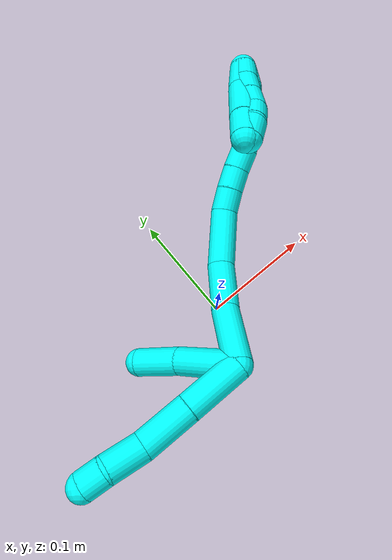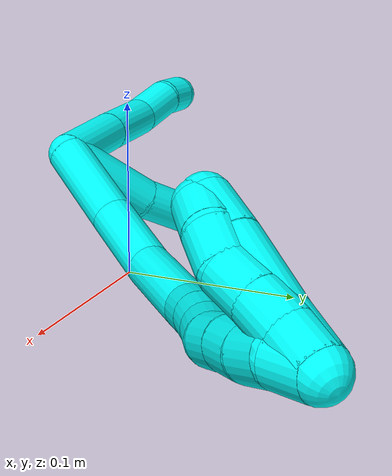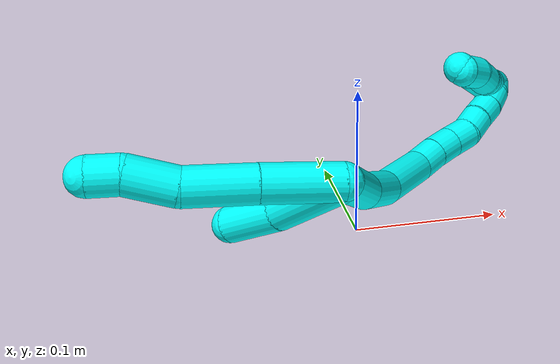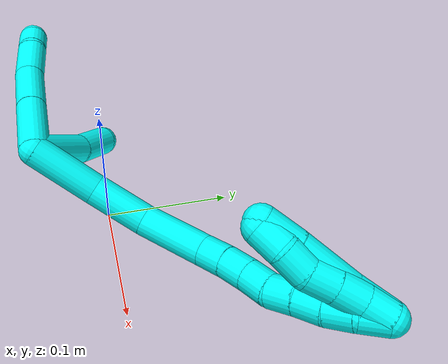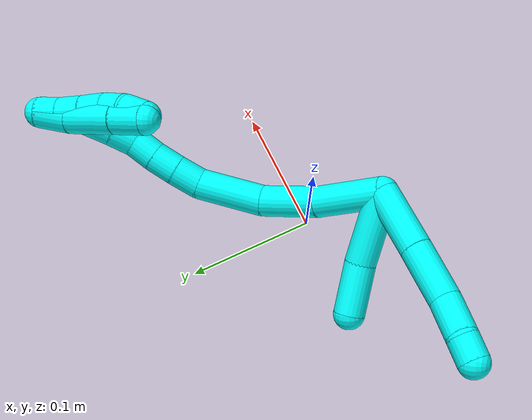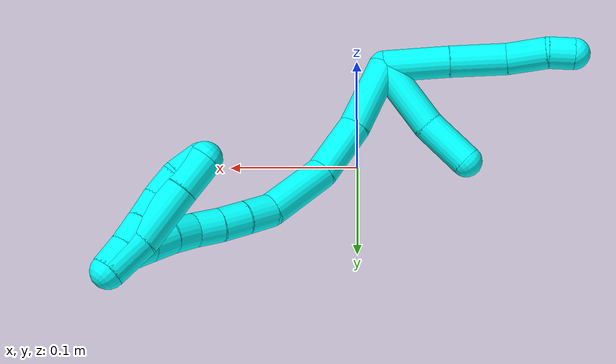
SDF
<sdf version="1.7">
 <world name="default">
  <model name="3">
   <static>0</static>
   <link name="3">
    <collision name="collision-cylinder-e_1_2_8">
     <pose>-0.011251 -0.016497 -0.016587 2.35894 -0.448287 -1.00955</pose>
     <geometry><cylinder><radius>0.0125</radius><length>0.051918</length></cylinder></geometry>
     <surface>
      <friction><ode><mu>1.16</mu><mu2>1.16</mu2><slip1>0</slip1><slip2>0</slip2></ode></friction>
      <contact><ode><kp>1e+06</kp><kd>1</kd><max_vel>0</max_vel><min_depth>0.001</min_depth></ode></contact>
     </surface>
    </collision>
    <visual name="visual-cylinder-e_1_2_8">
     <pose>-0.011251 -0.016497 -0.016587 2.35894 -0.448287 -1.00955</pose>
     <geometry><cylinder><radius>0.0125</radius><length>0.051918</length></cylinder></geometry>
     <material><ambient>0.003922 1 0.996078 1</ambient></material>
    </visual>
    <collision name="collision-cylinder-e_2_8_9">
     <pose>-0.032904 -0.0473 -0.047392 2.35308 -0.476127 -1.05606</pose>
     <geometry><cylinder><radius>0.0125</radius><length>0.045387</length></cylinder></geometry>
     <surface>
      <friction><ode><mu>1.16</mu><mu2>1.16</mu2><slip1>0</slip1><slip2>0</slip2></ode></friction>
      <contact><ode><kp>1e+06</kp><kd>1</kd><max_vel>0</max_vel><min_depth>0.001</min_depth></ode></contact>
     </surface>
    </collision>
    <visual name="visual-cylinder-e_2_8_9">
     <pose>-0.032904 -0.0473 -0.047392 2.35308 -0.476127 -1.05606</pose>
     <geometry><cylinder><radius>0.0125</radius><length>0.045387</length></cylinder></geometry>
     <material><ambient>0.003922 1 0.996078 1</ambient></material>
    </visual>
    <collision name="collision-cylinder-e_3_9_10">
     <pose>-0.047411 -0.074402 -0.070825 2.19493 -0.25473 -0.490017</pose>
     <geometry><cylinder><radius>0.0125</radius><length>0.03259</length></cylinder></geometry>
     <surface>
      <friction><ode><mu>1.16</mu><mu2>1.16</mu2><slip1>0</slip1><slip2>0</slip2></ode></friction>
      <contact><ode><kp>1e+06</kp><kd>1</kd><max_vel>0</max_vel><min_depth>0.001</min_depth></ode></contact>
     </surface>
    </collision>
    <visual name="visual-cylinder-e_3_9_10">
     <pose>-0.047411 -0.074402 -0.070825 2.19493 -0.25473 -0.490017</pose>
     <geometry><cylinder><radius>0.0125</radius><length>0.03259</length></cylinder></geometry>
     <material><ambient>0.003922 1 0.996078 1</ambient></material>
    </visual>
    <collision name="collision-cylinder-e_4_10_6">
     <pose>-0.056622 -0.093878 -0.085552 2.26069 -0.532637 -1.04934</pose>
     <geometry><cylinder><radius>0.0125</radius><length>0.020105</length></cylinder></geometry>
     <surface>
      <friction><ode><mu>1.16</mu><mu2>1.16</mu2><slip1>0</slip1><slip2>0</slip2></ode></friction>
      <contact><ode><kp>1e+06</kp><kd>1</kd><max_vel>0</max_vel><min_depth>0.001</min_depth></ode></contact>
     </surface>
    </collision>
    <visual name="visual-cylinder-e_4_10_6">
     <pose>-0.056622 -0.093878 -0.085552 2.26069 -0.532637 -1.04934</pose>
     <geometry><cylinder><radius>0.0125</radius><length>0.020105</length></cylinder></geometry>
     <material><ambient>0.003922 1 0.996078 1</ambient></material>
    </visual>
    <collision name="collision-cylinder-e_1_2_11">
     <pose>-0.023957 -0.01559 0.006829 1.15793 -0.953089 -0.65091</pose>
     <geometry><cylinder><radius>0.0125</radius><length>0.058775</length></cylinder></geometry>
     <surface>
      <friction><ode><mu>1.16</mu><mu2>1.16</mu2><slip1>0</slip1><slip2>0</slip2></ode></friction>
      <contact><ode><kp>1e+06</kp><kd>1</kd><max_vel>0</max_vel><min_depth>0.001</min_depth></ode></contact>
     </surface>
    </collision>
    <visual name="visual-cylinder-e_1_2_11">
     <pose>-0.023957 -0.01559 0.006829 1.15793 -0.953089 -0.65091</pose>
     <geometry><cylinder><radius>0.0125</radius><length>0.058775</length></cylinder></geometry>
     <material><ambient>0.003922 1 0.996078 1</ambient></material>
    </visual>
    <collision name="collision-cylinder-e_2_11_5">
     <pose>-0.063495 -0.044484 0.015918 1.40255 -0.85707 -0.736401</pose>
     <geometry><cylinder><radius>0.0125</radius><length>0.041225</length></cylinder></geometry>
     <surface>
      <friction><ode><mu>1.16</mu><mu2>1.16</mu2><slip1>0</slip1><slip2>0</slip2></ode></friction>
      <contact><ode><kp>1e+06</kp><kd>1</kd><max_vel>0</max_vel><min_depth>0.001</min_depth></ode></contact>
     </surface>
    </collision>
    <visual name="visual-cylinder-e_2_11_5">
     <pose>-0.063495 -0.044484 0.015918 1.40255 -0.85707 -0.736401</pose>
     <geometry><cylinder><radius>0.0125</radius><length>0.041225</length></cylinder></geometry>
     <material><ambient>0.003922 1 0.996078 1</ambient></material>
    </visual>
    <collision name="collision-cylinder-e_1_2_12">
     <pose>-0.007385 -0.001743 0.026925 0.064629 -0.267147 -0.008687</pose>
     <geometry><cylinder><radius>0.0125</radius><length>0.055948</length></cylinder></geometry>
     <surface>
      <friction><ode><mu>1.16</mu><mu2>1.16</mu2><slip1>0</slip1><slip2>0</slip2></ode></friction>
      <contact><ode><kp>1e+06</kp><kd>1</kd><max_vel>0</max_vel><min_depth>0.001</min_depth></ode></contact>
     </surface>
    </collision>
    <visual name="visual-cylinder-e_1_2_12">
     <pose>-0.007385 -0.001743 0.026925 0.064629 -0.267147 -0.008687</pose>
     <geometry><cylinder><radius>0.0125</radius><length>0.055948</length></cylinder></geometry>
     <material><ambient>0.003922 1 0.996078 1</ambient></material>
    </visual>
    <collision name="collision-cylinder-e_2_12_13">
     <pose>-0.016695 -0.004582 0.07697 0.047423 -0.083023 -0.00197</pose>
     <geometry><cylinder><radius>0.0125</radius><length>0.046452</length></cylinder></geometry>
     <surface>
      <friction><ode><mu>1.16</mu><mu2>1.16</mu2><slip1>0</slip1><slip2>0</slip2></ode></friction>
      <contact><ode><kp>1e+06</kp><kd>1</kd><max_vel>0</max_vel><min_depth>0.001</min_depth></ode></contact>
     </surface>
    </collision>
    <visual name="visual-cylinder-e_2_12_13">
     <pose>-0.016695 -0.004582 0.07697 0.047423 -0.083023 -0.00197</pose>
     <geometry><cylinder><radius>0.0125</radius><length>0.046452</length></cylinder></geometry>
     <material><ambient>0.003922 1 0.996078 1</ambient></material>
    </visual>
    <collision name="collision-cylinder-e_3_13_14">
     <pose>-0.012053 -0.007181 0.126228 0.057375 0.245791 0.007089</pose>
     <geometry><cylinder><radius>0.0125</radius><length>0.053984</length></cylinder></geometry>
     <surface>
      <friction><ode><mu>1.16</mu><mu2>1.16</mu2><slip1>0</slip1><slip2>0</slip2></ode></friction>
      <contact><ode><kp>1e+06</kp><kd>1</kd><max_vel>0</max_vel><min_depth>0.001</min_depth></ode></contact>
     </surface>
    </collision>
    <visual name="visual-cylinder-e_3_13_14">
     <pose>-0.012053 -0.007181 0.126228 0.057375 0.245791 0.007089</pose>
     <geometry><cylinder><radius>0.0125</radius><length>0.053984</length></cylinder></geometry>
     <material><ambient>0.003922 1 0.996078 1</ambient></material>
    </visual>
    <collision name="collision-cylinder-e_4_14_15">
     <pose>0.000302 -0.008599 0.161736 -0.008854 0.553287 -0.002514</pose>
     <geometry><cylinder><radius>0.0125</radius><length>0.022029</length></cylinder></geometry>
     <surface>
      <friction><ode><mu>1.16</mu><mu2>1.16</mu2><slip1>0</slip1><slip2>0</slip2></ode></friction>
      <contact><ode><kp>1e+06</kp><kd>1</kd><max_vel>0</max_vel><min_depth>0.001</min_depth></ode></contact>
     </surface>
    </collision>
    <visual name="visual-cylinder-e_4_14_15">
     <pose>0.000302 -0.008599 0.161736 -0.008854 0.553287 -0.002514</pose>
     <geometry><cylinder><radius>0.0125</radius><length>0.022029</length></cylinder></geometry>
     <material><ambient>0.003922 1 0.996078 1</ambient></material>
    </visual>
    <collision name="collision-cylinder-e_5_15_16">
     <pose>0.011406 -0.00768 0.179986 -0.093945 0.537545 -0.025893</pose>
     <geometry><cylinder><radius>0.0125</radius><length>0.020765</length></cylinder></geometry>
     <surface>
      <friction><ode><mu>1.16</mu><mu2>1.16</mu2><slip1>0</slip1><slip2>0</slip2></ode></friction>
      <contact><ode><kp>1e+06</kp><kd>1</kd><max_vel>0</max_vel><min_depth>0.001</min_depth></ode></contact>
     </surface>
    </collision>
    <visual name="visual-cylinder-e_5_15_16">
     <pose>0.011406 -0.00768 0.179986 -0.093945 0.537545 -0.025893</pose>
     <geometry><cylinder><radius>0.0125</radius><length>0.020765</length></cylinder></geometry>
     <material><ambient>0.003922 1 0.996078 1</ambient></material>
    </visual>
    <collision name="collision-cylinder-e_6_16_17">
     <pose>0.02246 -0.005356 0.197277 -0.175029 0.591419 -0.053445</pose>
     <geometry><cylinder><radius>0.0125</radius><length>0.020581</length></cylinder></geometry>
     <surface>
      <friction><ode><mu>1.16</mu><mu2>1.16</mu2><slip1>0</slip1><slip2>0</slip2></ode></friction>
      <contact><ode><kp>1e+06</kp><kd>1</kd><max_vel>0</max_vel><min_depth>0.001</min_depth></ode></contact>
     </surface>
    </collision>
    <visual name="visual-cylinder-e_6_16_17">
     <pose>0.02246 -0.005356 0.197277 -0.175029 0.591419 -0.053445</pose>
     <geometry><cylinder><radius>0.0125</radius><length>0.020581</length></cylinder></geometry>
     <material><ambient>0.003922 1 0.996078 1</ambient></material>
    </visual>
    <collision name="collision-cylinder-e_7_17_18">
     <pose>0.034013 -0.005503 0.213738 0.200385 0.616137 0.063955</pose>
     <geometry><cylinder><radius>0.0125</radius><length>0.020127</length></cylinder></geometry>
     <surface>
      <friction><ode><mu>1.16</mu><mu2>1.16</mu2><slip1>0</slip1><slip2>0</slip2></ode></friction>
      <contact><ode><kp>1e+06</kp><kd>1</kd><max_vel>0</max_vel><min_depth>0.001</min_depth></ode></contact>
     </surface>
    </collision>
    <visual name="visual-cylinder-e_7_17_18">
     <pose>0.034013 -0.005503 0.213738 0.200385 0.616137 0.063955</pose>
     <geometry><cylinder><radius>0.0125</radius><length>0.020127</length></cylinder></geometry>
     <material><ambient>0.003922 1 0.996078 1</ambient></material>
    </visual>
    <collision name="collision-cylinder-e_8_18_19">
     <pose>0.044843 -0.008431 0.230346 0.149985 0.525051 0.040375</pose>
     <geometry><cylinder><radius>0.0125</radius><length>0.02001</length></cylinder></geometry>
     <surface>
      <friction><ode><mu>1.16</mu><mu2>1.16</mu2><slip1>0</slip1><slip2>0</slip2></ode></friction>
      <contact><ode><kp>1e+06</kp><kd>1</kd><max_vel>0</max_vel><min_depth>0.001</min_depth></ode></contact>
     </surface>
    </collision>
    <visual name="visual-cylinder-e_8_18_19">
     <pose>0.044843 -0.008431 0.230346 0.149985 0.525051 0.040375</pose>
     <geometry><cylinder><radius>0.0125</radius><length>0.02001</length></cylinder></geometry>
     <material><ambient>0.003922 1 0.996078 1</ambient></material>
    </visual>
    <collision name="collision-cylinder-e_9_19_20">
     <pose>0.055073 -0.012556 0.246957 0.338162 0.548561 0.095993</pose>
     <geometry><cylinder><radius>0.0125</radius><length>0.020002</length></cylinder></geometry>
     <surface>
      <friction><ode><mu>1.16</mu><mu2>1.16</mu2><slip1>0</slip1><slip2>0</slip2></ode></friction>
      <contact><ode><kp>1e+06</kp><kd>1</kd><max_vel>0</max_vel><min_depth>0.001</min_depth></ode></contact>
     </surface>
    </collision>
    <visual name="visual-cylinder-e_9_19_20">
     <pose>0.055073 -0.012556 0.246957 0.338162 0.548561 0.095993</pose>
     <geometry><cylinder><radius>0.0125</radius><length>0.020002</length></cylinder></geometry>
     <material><ambient>0.003922 1 0.996078 1</ambient></material>
    </visual>
    <collision name="collision-cylinder-e_10_20_1">
     <pose>0.062605 -0.019448 0.263905 0.428174 0.232626 0.050796</pose>
     <geometry><cylinder><radius>0.0125</radius><length>0.020103</length></cylinder></geometry>
     <surface>
      <friction><ode><mu>1.16</mu><mu2>1.16</mu2><slip1>0</slip1><slip2>0</slip2></ode></friction>
      <contact><ode><kp>1e+06</kp><kd>1</kd><max_vel>0</max_vel><min_depth>0.001</min_depth></ode></contact>
     </surface>
    </collision>
    <visual name="visual-cylinder-e_10_20_1">
     <pose>0.062605 -0.019448 0.263905 0.428174 0.232626 0.050796</pose>
     <geometry><cylinder><radius>0.0125</radius><length>0.020103</length></cylinder></geometry>
     <material><ambient>0.003922 1 0.996078 1</ambient></material>
    </visual>
    <collision name="collision-cylinder-e_1_1_21">
     <pose>0.065547 -0.023172 0.262828 -3.1078 0.062445 -2.14968</pose>
     <geometry><cylinder><radius>0.0125</radius><length>0.02</length></cylinder></geometry>
     <surface>
      <friction><ode><mu>1.16</mu><mu2>1.16</mu2><slip1>0</slip1><slip2>0</slip2></ode></friction>
      <contact><ode><kp>1e+06</kp><kd>1</kd><max_vel>0</max_vel><min_depth>0.001</min_depth></ode></contact>
     </surface>
    </collision>
    <visual name="visual-cylinder-e_1_1_21">
     <pose>0.065547 -0.023172 0.262828 -3.1078 0.062445 -2.14968</pose>
     <geometry><cylinder><radius>0.0125</radius><length>0.02</length></cylinder></geometry>
     <material><ambient>0.003922 1 0.996078 1</ambient></material>
    </visual>
    <collision name="collision-cylinder-e_2_21_22">
     <pose>0.067285 -0.021799 0.242969 -3.03717 0.111658 -1.6379</pose>
     <geometry><cylinder><radius>0.0125</radius><length>0.02</length></cylinder></geometry>
     <surface>
      <friction><ode><mu>1.16</mu><mu2>1.16</mu2><slip1>0</slip1><slip2>0</slip2></ode></friction>
      <contact><ode><kp>1e+06</kp><kd>1</kd><max_vel>0</max_vel><min_depth>0.001</min_depth></ode></contact>
     </surface>
    </collision>
    <visual name="visual-cylinder-e_2_21_22">
     <pose>0.067285 -0.021799 0.242969 -3.03717 0.111658 -1.6379</pose>
     <geometry><cylinder><radius>0.0125</radius><length>0.02</length></cylinder></geometry>
     <material><ambient>0.003922 1 0.996078 1</ambient></material>
    </visual>
    <collision name="collision-cylinder-e_3_22_23">
     <pose>0.069526 -0.019157 0.22328 -2.97931 0.112871 -1.21438</pose>
     <geometry><cylinder><radius>0.0125</radius><length>0.02</length></cylinder></geometry>
     <surface>
      <friction><ode><mu>1.16</mu><mu2>1.16</mu2><slip1>0</slip1><slip2>0</slip2></ode></friction>
      <contact><ode><kp>1e+06</kp><kd>1</kd><max_vel>0</max_vel><min_depth>0.001</min_depth></ode></contact>
     </surface>
    </collision>
    <visual name="visual-cylinder-e_3_22_23">
     <pose>0.069526 -0.019157 0.22328 -2.97931 0.112871 -1.21438</pose>
     <geometry><cylinder><radius>0.0125</radius><length>0.02</length></cylinder></geometry>
     <material><ambient>0.003922 1 0.996078 1</ambient></material>
    </visual>
    <collision name="collision-cylinder-e_4_23_24">
     <pose>0.072357 -0.019287 0.203775 2.96458 0.171308 1.53788</pose>
     <geometry><cylinder><radius>0.0125</radius><length>0.02</length></cylinder></geometry>
     <surface>
      <friction><ode><mu>1.16</mu><mu2>1.16</mu2><slip1>0</slip1><slip2>0</slip2></ode></friction>
      <contact><ode><kp>1e+06</kp><kd>1</kd><max_vel>0</max_vel><min_depth>0.001</min_depth></ode></contact>
     </surface>
    </collision>
    <visual name="visual-cylinder-e_4_23_24">
     <pose>0.072357 -0.019287 0.203775 2.96458 0.171308 1.53788</pose>
     <geometry><cylinder><radius>0.0125</radius><length>0.02</length></cylinder></geometry>
     <material><ambient>0.003922 1 0.996078 1</ambient></material>
    </visual>
    <collision name="collision-cylinder-e_5_24_4">
     <pose>0.073138 -0.023104 0.184338 2.93093 -0.092467 -0.825025</pose>
     <geometry><cylinder><radius>0.0125</radius><length>0.02</length></cylinder></geometry>
     <surface>
      <friction><ode><mu>1.16</mu><mu2>1.16</mu2><slip1>0</slip1><slip2>0</slip2></ode></friction>
      <contact><ode><kp>1e+06</kp><kd>1</kd><max_vel>0</max_vel><min_depth>0.001</min_depth></ode></contact>
     </surface>
    </collision>
    <visual name="visual-cylinder-e_5_24_4">
     <pose>0.073138 -0.023104 0.184338 2.93093 -0.092467 -0.825025</pose>
     <geometry><cylinder><radius>0.0125</radius><length>0.02</length></cylinder></geometry>
     <material><ambient>0.003922 1 0.996078 1</ambient></material>
    </visual>
    <collision name="collision-cylinder-e_1_1_25">
     <pose>0.064243 -0.024312 0.258075 3.08711 -0.046079 -1.40405</pose>
     <geometry><cylinder><radius>0.0125</radius><length>0.02953</length></cylinder></geometry>
     <surface>
      <friction><ode><mu>1.16</mu><mu2>1.16</mu2><slip1>0</slip1><slip2>0</slip2></ode></friction>
      <contact><ode><kp>1e+06</kp><kd>1</kd><max_vel>0</max_vel><min_depth>0.001</min_depth></ode></contact>
     </surface>
    </collision>
    <visual name="visual-cylinder-e_1_1_25">
     <pose>0.064243 -0.024312 0.258075 3.08711 -0.046079 -1.40405</pose>
     <geometry><cylinder><radius>0.0125</radius><length>0.02953</length></cylinder></geometry>
     <material><ambient>0.003922 1 0.996078 1</ambient></material>
    </visual>
    <collision name="collision-cylinder-e_2_25_26">
     <pose>0.066568 -0.026471 0.22192 3.07839 0.139087 2.28957</pose>
     <geometry><cylinder><radius>0.0125</radius><length>0.04336</length></cylinder></geometry>
     <surface>
      <friction><ode><mu>1.16</mu><mu2>1.16</mu2><slip1>0</slip1><slip2>0</slip2></ode></friction>
      <contact><ode><kp>1e+06</kp><kd>1</kd><max_vel>0</max_vel><min_depth>0.001</min_depth></ode></contact>
     </surface>
    </collision>
    <visual name="visual-cylinder-e_2_25_26">
     <pose>0.066568 -0.026471 0.22192 3.07839 0.139087 2.28957</pose>
     <geometry><cylinder><radius>0.0125</radius><length>0.04336</length></cylinder></geometry>
     <material><ambient>0.003922 1 0.996078 1</ambient></material>
    </visual>
    <collision name="collision-cylinder-e_3_26_3">
     <pose>0.070955 -0.028203 0.187013 3.11373 0.102101 2.60917</pose>
     <geometry><cylinder><radius>0.0125</radius><length>0.02711</length></cylinder></geometry>
     <surface>
      <friction><ode><mu>1.16</mu><mu2>1.16</mu2><slip1>0</slip1><slip2>0</slip2></ode></friction>
      <contact><ode><kp>1e+06</kp><kd>1</kd><max_vel>0</max_vel><min_depth>0.001</min_depth></ode></contact>
     </surface>
    </collision>
    <visual name="visual-cylinder-e_3_26_3">
     <pose>0.070955 -0.028203 0.187013 3.11373 0.102101 2.60917</pose>
     <geometry><cylinder><radius>0.0125</radius><length>0.02711</length></cylinder></geometry>
     <material><ambient>0.003922 1 0.996078 1</ambient></material>
    </visual>
    <collision name="collision-sphere-3">
     <pose>0.072337 -0.028579 0.173534 0 -0 0</pose>
     <geometry><sphere><radius>0.0125</radius></sphere></geometry>
     <surface>
      <friction><ode><mu>1.16</mu><mu2>1.16</mu2><slip1>0</slip1><slip2>0</slip2></ode></friction>
      <contact><ode><kp>1e+06</kp><kd>1</kd><max_vel>0</max_vel><min_depth>0.001</min_depth></ode></contact>
     </surface>
    </collision>
    <visual name="visual-sphere-3">
     <pose>0.072337 -0.028579 0.173534 0 -0 0</pose>
     <geometry><sphere><radius>0.0125</radius></sphere></geometry>
     <material><ambient>0.003922 1 0.996078 1</ambient></material>
    </visual>
    <collision name="collision-sphere-26">
     <pose>0.069574 -0.027827 0.200492 0 -0 0</pose>
     <geometry><sphere><radius>0.0125</radius></sphere></geometry>
     <surface>
      <friction><ode><mu>1.16</mu><mu2>1.16</mu2><slip1>0</slip1><slip2>0</slip2></ode></friction>
      <contact><ode><kp>1e+06</kp><kd>1</kd><max_vel>0</max_vel><min_depth>0.001</min_depth></ode></contact>
     </surface>
    </collision>
    <visual name="visual-sphere-26">
     <pose>0.069574 -0.027827 0.200492 0 -0 0</pose>
     <geometry><sphere><radius>0.0125</radius></sphere></geometry>
     <material><ambient>0.003922 1 0.996078 1</ambient></material>
    </visual>
    <collision name="collision-sphere-25">
     <pose>0.063562 -0.025115 0.243348 0 -0 0</pose>
     <geometry><sphere><radius>0.0125</radius></sphere></geometry>
     <surface>
      <friction><ode><mu>1.16</mu><mu2>1.16</mu2><slip1>0</slip1><slip2>0</slip2></ode></friction>
      <contact><ode><kp>1e+06</kp><kd>1</kd><max_vel>0</max_vel><min_depth>0.001</min_depth></ode></contact>
     </surface>
    </collision>
    <visual name="visual-sphere-25">
     <pose>0.063562 -0.025115 0.243348 0 -0 0</pose>
     <geometry><sphere><radius>0.0125</radius></sphere></geometry>
     <material><ambient>0.003922 1 0.996078 1</ambient></material>
    </visual>
    <collision name="collision-sphere-4">
     <pose>0.072215 -0.025187 0.174601 0 -0 0</pose>
     <geometry><sphere><radius>0.0125</radius></sphere></geometry>
     <surface>
      <friction><ode><mu>1.16</mu><mu2>1.16</mu2><slip1>0</slip1><slip2>0</slip2></ode></friction>
      <contact><ode><kp>1e+06</kp><kd>1</kd><max_vel>0</max_vel><min_depth>0.001</min_depth></ode></contact>
     </surface>
    </collision>
    <visual name="visual-sphere-4">
     <pose>0.072215 -0.025187 0.174601 0 -0 0</pose>
     <geometry><sphere><radius>0.0125</radius></sphere></geometry>
     <material><ambient>0.003922 1 0.996078 1</ambient></material>
    </visual>
    <collision name="collision-sphere-24">
     <pose>0.074061 -0.021022 0.194075 0 -0 0</pose>
     <geometry><sphere><radius>0.0125</radius></sphere></geometry>
     <surface>
      <friction><ode><mu>1.16</mu><mu2>1.16</mu2><slip1>0</slip1><slip2>0</slip2></ode></friction>
      <contact><ode><kp>1e+06</kp><kd>1</kd><max_vel>0</max_vel><min_depth>0.001</min_depth></ode></contact>
     </surface>
    </collision>
    <visual name="visual-sphere-24">
     <pose>0.074061 -0.021022 0.194075 0 -0 0</pose>
     <geometry><sphere><radius>0.0125</radius></sphere></geometry>
     <material><ambient>0.003922 1 0.996078 1</ambient></material>
    </visual>
    <collision name="collision-sphere-23">
     <pose>0.070652 -0.017552 0.213474 0 -0 0</pose>
     <geometry><sphere><radius>0.0125</radius></sphere></geometry>
     <surface>
      <friction><ode><mu>1.16</mu><mu2>1.16</mu2><slip1>0</slip1><slip2>0</slip2></ode></friction>
      <contact><ode><kp>1e+06</kp><kd>1</kd><max_vel>0</max_vel><min_depth>0.001</min_depth></ode></contact>
     </surface>
    </collision>
    <visual name="visual-sphere-23">
     <pose>0.070652 -0.017552 0.213474 0 -0 0</pose>
     <geometry><sphere><radius>0.0125</radius></sphere></geometry>
     <material><ambient>0.003922 1 0.996078 1</ambient></material>
    </visual>
    <collision name="collision-sphere-22">
     <pose>0.068399 -0.020763 0.233086 0 -0 0</pose>
     <geometry><sphere><radius>0.0125</radius></sphere></geometry>
     <surface>
      <friction><ode><mu>1.16</mu><mu2>1.16</mu2><slip1>0</slip1><slip2>0</slip2></ode></friction>
      <contact><ode><kp>1e+06</kp><kd>1</kd><max_vel>0</max_vel><min_depth>0.001</min_depth></ode></contact>
     </surface>
    </collision>
    <visual name="visual-sphere-22">
     <pose>0.068399 -0.020763 0.233086 0 -0 0</pose>
     <geometry><sphere><radius>0.0125</radius></sphere></geometry>
     <material><ambient>0.003922 1 0.996078 1</ambient></material>
    </visual>
    <collision name="collision-sphere-21">
     <pose>0.066171 -0.022834 0.252853 0 -0 0</pose>
     <geometry><sphere><radius>0.0125</radius></sphere></geometry>
     <surface>
      <friction><ode><mu>1.16</mu><mu2>1.16</mu2><slip1>0</slip1><slip2>0</slip2></ode></friction>
      <contact><ode><kp>1e+06</kp><kd>1</kd><max_vel>0</max_vel><min_depth>0.001</min_depth></ode></contact>
     </surface>
    </collision>
    <visual name="visual-sphere-21">
     <pose>0.066171 -0.022834 0.252853 0 -0 0</pose>
     <geometry><sphere><radius>0.0125</radius></sphere></geometry>
     <material><ambient>0.003922 1 0.996078 1</ambient></material>
    </visual>
    <collision name="collision-sphere-1">
     <pose>0.064923 -0.023509 0.272803 0 -0 0</pose>
     <geometry><sphere><radius>0.0125</radius></sphere></geometry>
     <surface>
      <friction><ode><mu>1.16</mu><mu2>1.16</mu2><slip1>0</slip1><slip2>0</slip2></ode></friction>
      <contact><ode><kp>1e+06</kp><kd>1</kd><max_vel>0</max_vel><min_depth>0.001</min_depth></ode></contact>
     </surface>
    </collision>
    <visual name="visual-sphere-1">
     <pose>0.064923 -0.023509 0.272803 0 -0 0</pose>
     <geometry><sphere><radius>0.0125</radius></sphere></geometry>
     <material><ambient>0.003922 1 0.996078 1</ambient></material>
    </visual>
    <collision name="collision-sphere-11">
     <pose>-0.047914 -0.03118 0.013658 0 -0 0</pose>
     <geometry><sphere><radius>0.0125</radius></sphere></geometry>
     <surface>
      <friction><ode><mu>1.16</mu><mu2>1.16</mu2><slip1>0</slip1><slip2>0</slip2></ode></friction>
      <contact><ode><kp>1e+06</kp><kd>1</kd><max_vel>0</max_vel><min_depth>0.001</min_depth></ode></contact>
     </surface>
    </collision>
    <visual name="visual-sphere-11">
     <pose>-0.047914 -0.03118 0.013658 0 -0 0</pose>
     <geometry><sphere><radius>0.0125</radius></sphere></geometry>
     <material><ambient>0.003922 1 0.996078 1</ambient></material>
    </visual>
    <collision name="collision-sphere-6">
     <pose>-0.061727 -0.100558 -0.091064 0 -0 0</pose>
     <geometry><sphere><radius>0.0125</radius></sphere></geometry>
     <surface>
      <friction><ode><mu>1.16</mu><mu2>1.16</mu2><slip1>0</slip1><slip2>0</slip2></ode></friction>
      <contact><ode><kp>1e+06</kp><kd>1</kd><max_vel>0</max_vel><min_depth>0.001</min_depth></ode></contact>
     </surface>
    </collision>
    <visual name="visual-sphere-6">
     <pose>-0.061727 -0.100558 -0.091064 0 -0 0</pose>
     <geometry><sphere><radius>0.0125</radius></sphere></geometry>
     <material><ambient>0.003922 1 0.996078 1</ambient></material>
    </visual>
    <collision name="collision-sphere-10">
     <pose>-0.051517 -0.087199 -0.08004 0 -0 0</pose>
     <geometry><sphere><radius>0.0125</radius></sphere></geometry>
     <surface>
      <friction><ode><mu>1.16</mu><mu2>1.16</mu2><slip1>0</slip1><slip2>0</slip2></ode></friction>
      <contact><ode><kp>1e+06</kp><kd>1</kd><max_vel>0</max_vel><min_depth>0.001</min_depth></ode></contact>
     </surface>
    </collision>
    <visual name="visual-sphere-10">
     <pose>-0.051517 -0.087199 -0.08004 0 -0 0</pose>
     <geometry><sphere><radius>0.0125</radius></sphere></geometry>
     <material><ambient>0.003922 1 0.996078 1</ambient></material>
    </visual>
    <collision name="collision-sphere-9">
     <pose>-0.043305 -0.061606 -0.06161 0 -0 0</pose>
     <geometry><sphere><radius>0.0125</radius></sphere></geometry>
     <surface>
      <friction><ode><mu>1.16</mu><mu2>1.16</mu2><slip1>0</slip1><slip2>0</slip2></ode></friction>
      <contact><ode><kp>1e+06</kp><kd>1</kd><max_vel>0</max_vel><min_depth>0.001</min_depth></ode></contact>
     </surface>
    </collision>
    <visual name="visual-sphere-9">
     <pose>-0.043305 -0.061606 -0.06161 0 -0 0</pose>
     <geometry><sphere><radius>0.0125</radius></sphere></geometry>
     <material><ambient>0.003922 1 0.996078 1</ambient></material>
    </visual>
    <collision name="collision-sphere-2">
     <geometry><sphere><radius>0.0125</radius></sphere></geometry>
     <surface>
      <friction><ode><mu>1.16</mu><mu2>1.16</mu2><slip1>0</slip1><slip2>0</slip2></ode></friction>
      <contact><ode><kp>1e+06</kp><kd>1</kd><max_vel>0</max_vel><min_depth>0.001</min_depth></ode></contact>
     </surface>
    </collision>
    <visual name="visual-sphere-2">
     <geometry><sphere><radius>0.0125</radius></sphere></geometry>
     <material><ambient>0.003922 1 0.996078 1</ambient></material>
    </visual>
    <collision name="collision-sphere-19">
     <pose>0.049858 -0.009725 0.238906 0 -0 0</pose>
     <geometry><sphere><radius>0.0125</radius></sphere></geometry>
     <surface>
      <friction><ode><mu>1.16</mu><mu2>1.16</mu2><slip1>0</slip1><slip2>0</slip2></ode></friction>
      <contact><ode><kp>1e+06</kp><kd>1</kd><max_vel>0</max_vel><min_depth>0.001</min_depth></ode></contact>
     </surface>
    </collision>
    <visual name="visual-sphere-19">
     <pose>0.049858 -0.009725 0.238906 0 -0 0</pose>
     <geometry><sphere><radius>0.0125</radius></sphere></geometry>
     <material><ambient>0.003922 1 0.996078 1</ambient></material>
    </visual>
    <collision name="collision-sphere-8">
     <pose>-0.022502 -0.032993 -0.033175 0 -0 0</pose>
     <geometry><sphere><radius>0.0125</radius></sphere></geometry>
     <surface>
      <friction><ode><mu>1.16</mu><mu2>1.16</mu2><slip1>0</slip1><slip2>0</slip2></ode></friction>
      <contact><ode><kp>1e+06</kp><kd>1</kd><max_vel>0</max_vel><min_depth>0.001</min_depth></ode></contact>
     </surface>
    </collision>
    <visual name="visual-sphere-8">
     <pose>-0.022502 -0.032993 -0.033175 0 -0 0</pose>
     <geometry><sphere><radius>0.0125</radius></sphere></geometry>
     <material><ambient>0.003922 1 0.996078 1</ambient></material>
    </visual>
    <collision name="collision-sphere-5">
     <pose>-0.079077 -0.057787 0.018177 0 -0 0</pose>
     <geometry><sphere><radius>0.0125</radius></sphere></geometry>
     <surface>
      <friction><ode><mu>1.16</mu><mu2>1.16</mu2><slip1>0</slip1><slip2>0</slip2></ode></friction>
      <contact><ode><kp>1e+06</kp><kd>1</kd><max_vel>0</max_vel><min_depth>0.001</min_depth></ode></contact>
     </surface>
    </collision>
    <visual name="visual-sphere-5">
     <pose>-0.079077 -0.057787 0.018177 0 -0 0</pose>
     <geometry><sphere><radius>0.0125</radius></sphere></geometry>
     <material><ambient>0.003922 1 0.996078 1</ambient></material>
    </visual>
    <collision name="collision-sphere-12">
     <pose>-0.014769 -0.003485 0.05385 0 -0 0</pose>
     <geometry><sphere><radius>0.0125</radius></sphere></geometry>
     <surface>
      <friction><ode><mu>1.16</mu><mu2>1.16</mu2><slip1>0</slip1><slip2>0</slip2></ode></friction>
      <contact><ode><kp>1e+06</kp><kd>1</kd><max_vel>0</max_vel><min_depth>0.001</min_depth></ode></contact>
     </surface>
    </collision>
    <visual name="visual-sphere-12">
     <pose>-0.014769 -0.003485 0.05385 0 -0 0</pose>
     <geometry><sphere><radius>0.0125</radius></sphere></geometry>
     <material><ambient>0.003922 1 0.996078 1</ambient></material>
    </visual>
    <collision name="collision-sphere-13">
     <pose>-0.018621 -0.00568 0.100091 0 -0 0</pose>
     <geometry><sphere><radius>0.0125</radius></sphere></geometry>
     <surface>
      <friction><ode><mu>1.16</mu><mu2>1.16</mu2><slip1>0</slip1><slip2>0</slip2></ode></friction>
      <contact><ode><kp>1e+06</kp><kd>1</kd><max_vel>0</max_vel><min_depth>0.001</min_depth></ode></contact>
     </surface>
    </collision>
    <visual name="visual-sphere-13">
     <pose>-0.018621 -0.00568 0.100091 0 -0 0</pose>
     <geometry><sphere><radius>0.0125</radius></sphere></geometry>
     <material><ambient>0.003922 1 0.996078 1</ambient></material>
    </visual>
    <collision name="collision-sphere-14">
     <pose>-0.005486 -0.008682 0.152366 0 -0 0</pose>
     <geometry><sphere><radius>0.0125</radius></sphere></geometry>
     <surface>
      <friction><ode><mu>1.16</mu><mu2>1.16</mu2><slip1>0</slip1><slip2>0</slip2></ode></friction>
      <contact><ode><kp>1e+06</kp><kd>1</kd><max_vel>0</max_vel><min_depth>0.001</min_depth></ode></contact>
     </surface>
    </collision>
    <visual name="visual-sphere-14">
     <pose>-0.005486 -0.008682 0.152366 0 -0 0</pose>
     <geometry><sphere><radius>0.0125</radius></sphere></geometry>
     <material><ambient>0.003922 1 0.996078 1</ambient></material>
    </visual>
    <collision name="collision-sphere-15">
     <pose>0.00609 -0.008516 0.171107 0 -0 0</pose>
     <geometry><sphere><radius>0.0125</radius></sphere></geometry>
     <surface>
      <friction><ode><mu>1.16</mu><mu2>1.16</mu2><slip1>0</slip1><slip2>0</slip2></ode></friction>
      <contact><ode><kp>1e+06</kp><kd>1</kd><max_vel>0</max_vel><min_depth>0.001</min_depth></ode></contact>
     </surface>
    </collision>
    <visual name="visual-sphere-15">
     <pose>0.00609 -0.008516 0.171107 0 -0 0</pose>
     <geometry><sphere><radius>0.0125</radius></sphere></geometry>
     <material><ambient>0.003922 1 0.996078 1</ambient></material>
    </visual>
    <collision name="collision-sphere-16">
     <pose>0.016722 -0.006843 0.188865 0 -0 0</pose>
     <geometry><sphere><radius>0.0125</radius></sphere></geometry>
     <surface>
      <friction><ode><mu>1.16</mu><mu2>1.16</mu2><slip1>0</slip1><slip2>0</slip2></ode></friction>
      <contact><ode><kp>1e+06</kp><kd>1</kd><max_vel>0</max_vel><min_depth>0.001</min_depth></ode></contact>
     </surface>
    </collision>
    <visual name="visual-sphere-16">
     <pose>0.016722 -0.006843 0.188865 0 -0 0</pose>
     <geometry><sphere><radius>0.0125</radius></sphere></geometry>
     <material><ambient>0.003922 1 0.996078 1</ambient></material>
    </visual>
    <collision name="collision-sphere-17">
     <pose>0.028197 -0.003868 0.205689 0 -0 0</pose>
     <geometry><sphere><radius>0.0125</radius></sphere></geometry>
     <surface>
      <friction><ode><mu>1.16</mu><mu2>1.16</mu2><slip1>0</slip1><slip2>0</slip2></ode></friction>
      <contact><ode><kp>1e+06</kp><kd>1</kd><max_vel>0</max_vel><min_depth>0.001</min_depth></ode></contact>
     </surface>
    </collision>
    <visual name="visual-sphere-17">
     <pose>0.028197 -0.003868 0.205689 0 -0 0</pose>
     <geometry><sphere><radius>0.0125</radius></sphere></geometry>
     <material><ambient>0.003922 1 0.996078 1</ambient></material>
    </visual>
    <collision name="collision-sphere-18">
     <pose>0.039828 -0.007137 0.221786 0 -0 0</pose>
     <geometry><sphere><radius>0.0125</radius></sphere></geometry>
     <surface>
      <friction><ode><mu>1.16</mu><mu2>1.16</mu2><slip1>0</slip1><slip2>0</slip2></ode></friction>
      <contact><ode><kp>1e+06</kp><kd>1</kd><max_vel>0</max_vel><min_depth>0.001</min_depth></ode></contact>
     </surface>
    </collision>
    <visual name="visual-sphere-18">
     <pose>0.039828 -0.007137 0.221786 0 -0 0</pose>
     <geometry><sphere><radius>0.0125</radius></sphere></geometry>
     <material><ambient>0.003922 1 0.996078 1</ambient></material>
    </visual>
    <collision name="collision-sphere-20">
     <pose>0.060288 -0.015387 0.255007 0 -0 0</pose>
     <geometry><sphere><radius>0.0125</radius></sphere></geometry>
     <surface>
      <friction><ode><mu>1.16</mu><mu2>1.16</mu2><slip1>0</slip1><slip2>0</slip2></ode></friction>
      <contact><ode><kp>1e+06</kp><kd>1</kd><max_vel>0</max_vel><min_depth>0.001</min_depth></ode></contact>
     </surface>
    </collision>
    <visual name="visual-sphere-20">
     <pose>0.060288 -0.015387 0.255007 0 -0 0</pose>
     <geometry><sphere><radius>0.0125</radius></sphere></geometry>
     <material><ambient>0.003922 1 0.996078 1</ambient></material>
    </visual>
    <inertial>
     <pose>0.010248 -0.02254 0.108116 0 -0 0</pose>
     <mass>0.75</mass>
     <inertia><ixx>3.6e-05</ixx><ixy>0</ixy><ixz>0</ixz><iyy>3e-05</iyy><iyz>0</iyz><izz>6.6e-05</izz></inertia>
    </inertial>
   </link>
   <pose>-0.021258 -0.051031 0.062164 -2.24395 -1.0345 -0.1037</pose>
  </model>
 </world>
</sdf>
